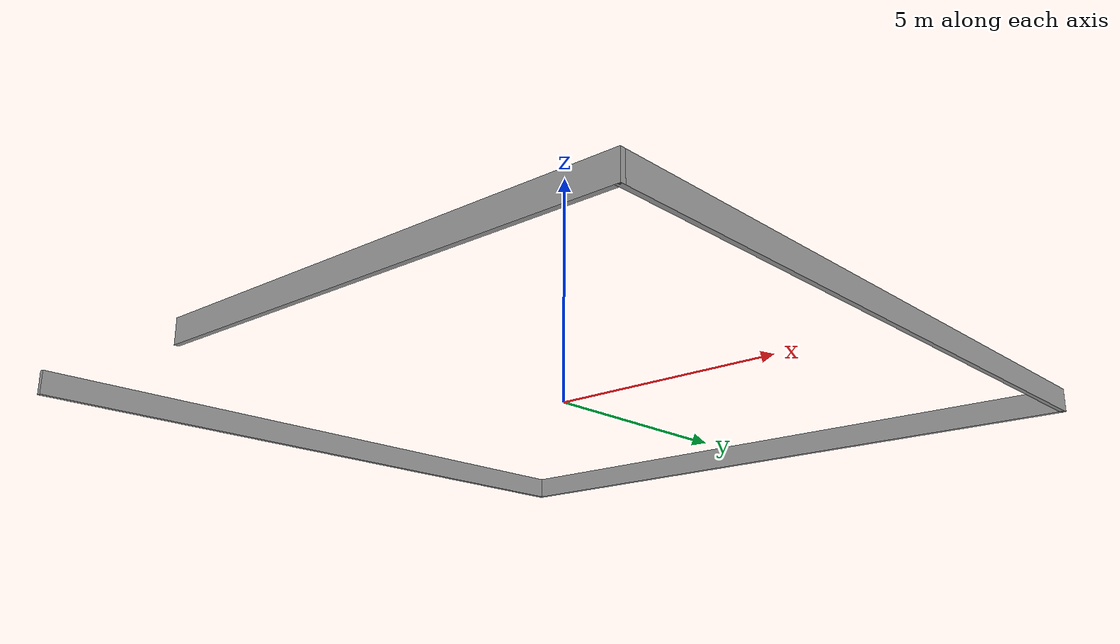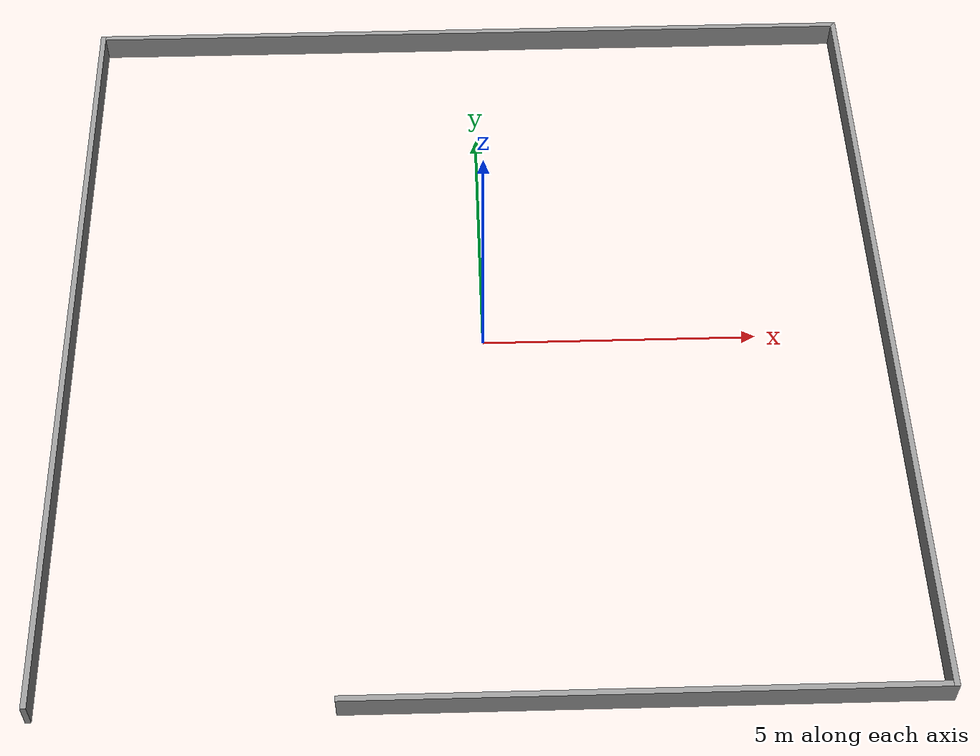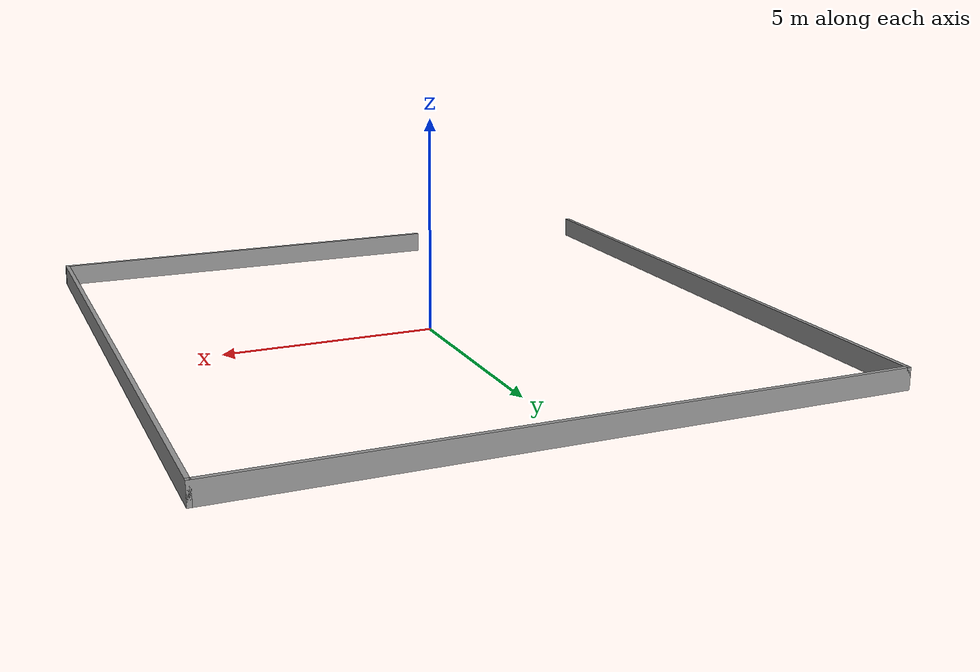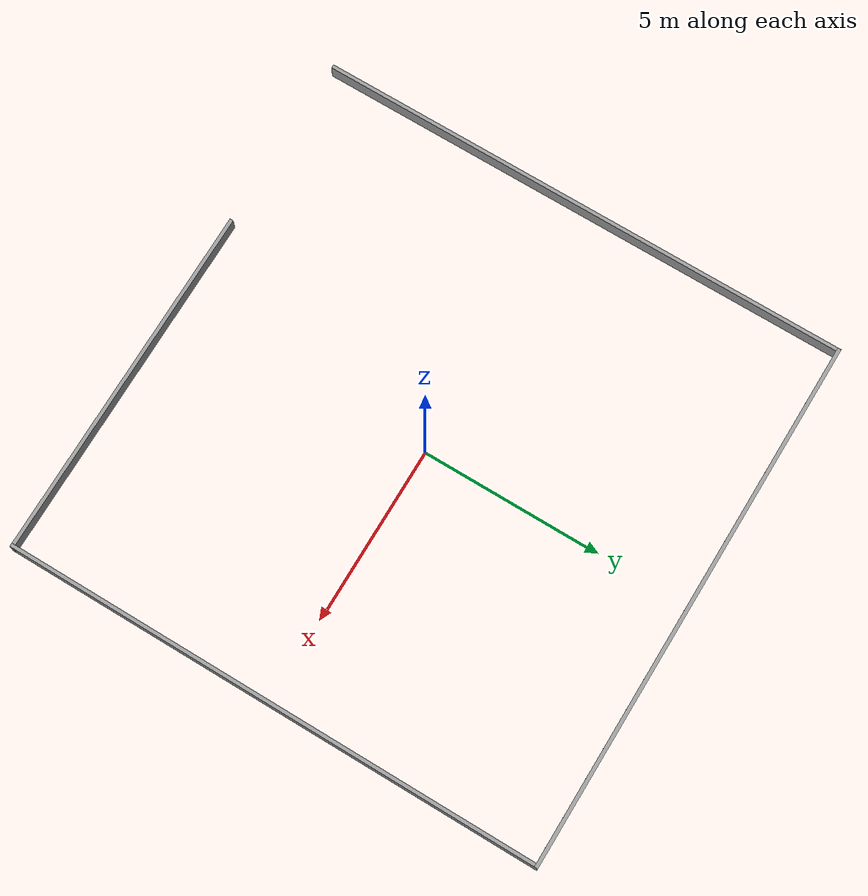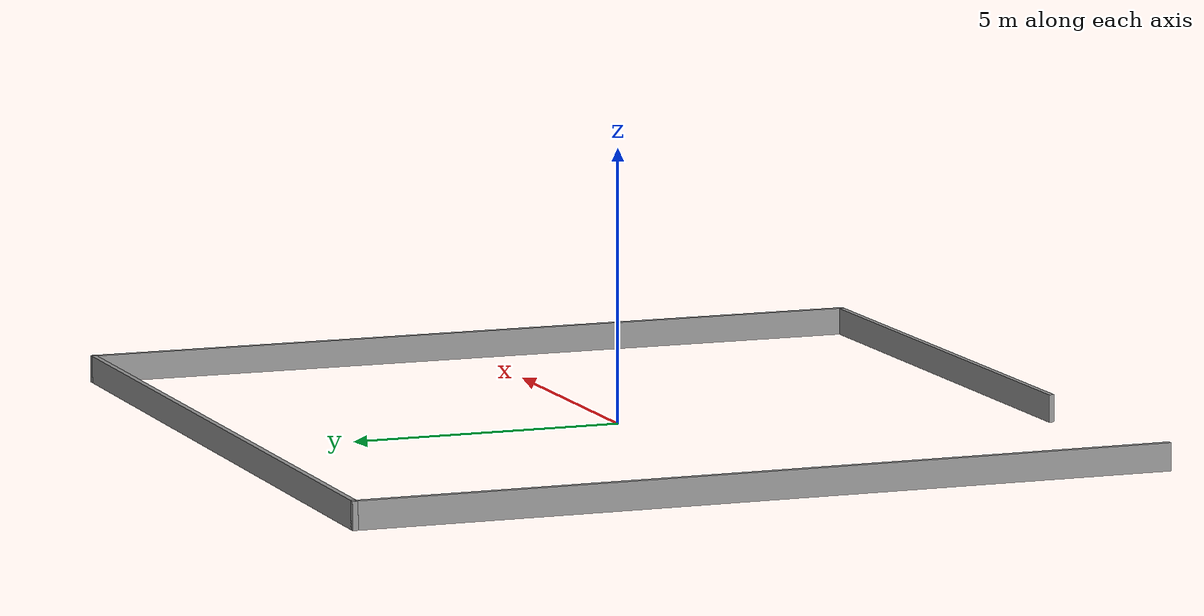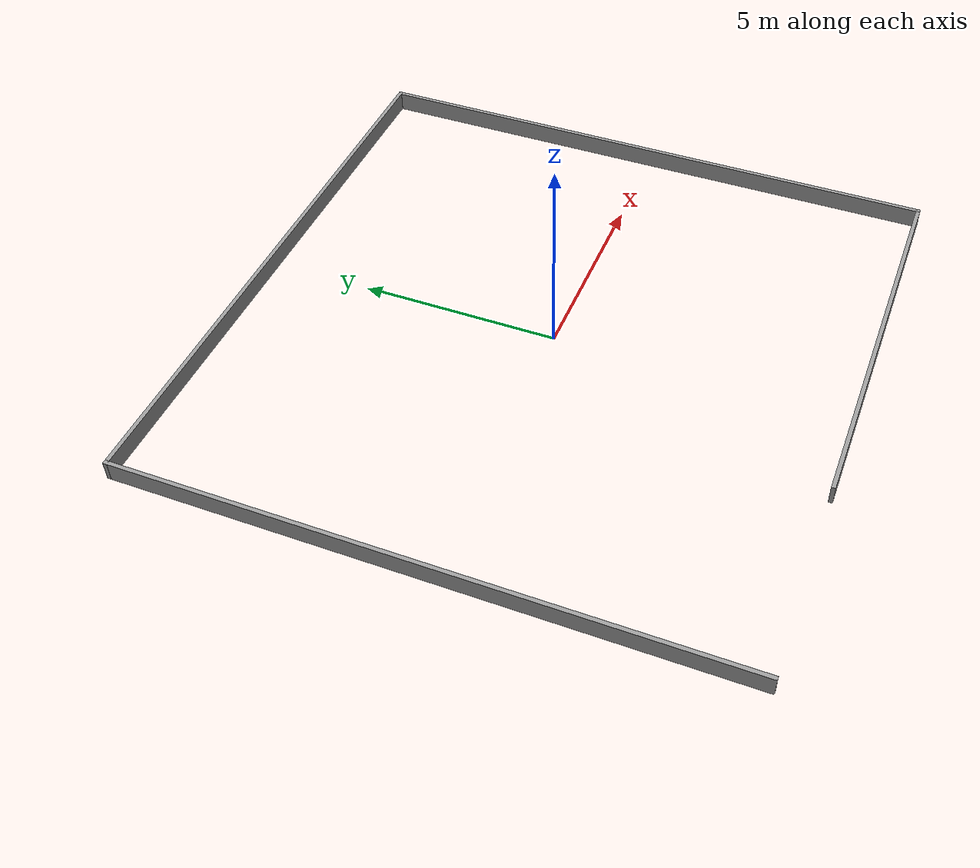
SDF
<?xml version='1.0'?>
<sdf version='1.6'>
  <model name='shape7'>
    <pose frame=''>-0.072 0.103 0 0 -0 0</pose>
    <link name='Wall_14'>
      <collision name='Wall_14_Collision'>
        <geometry>
          <box>
            <size>15 0.1 0.5</size>
          </box>
        </geometry>
        <pose frame=''>0 0 0.25 0 -0 0</pose>
      </collision>
      <visual name='Wall_14_Visual'>
        <pose frame=''>0 0 0.25 0 -0 0</pose>
        <geometry>
          <box>
            <size>15 0.1 0.5</size>
          </box>
        </geometry>
        <material>
          <script>
            <uri>file://media/materials/scripts/gazebo.material</uri>
            <name>Gazebo/Grey</name>
          </script>
          <ambient>1 1 1 1</ambient>
        </material>
        <meta>
          <layer>0</layer>
        </meta>
      </visual>
      <pose frame=''>0 7.45 0 0 -0 0</pose>
    </link>
    <link name='Wall_15'>
      <collision name='Wall_15_Collision'>
        <geometry>
          <box>
            <size>15 0.1 0.5</size>
          </box>
        </geometry>
        <pose frame=''>0 0 0.25 0 -0 0</pose>
      </collision>
      <visual name='Wall_15_Visual'>
        <pose frame=''>0 0 0.25 0 -0 0</pose>
        <geometry>
          <box>
            <size>15 0.1 0.5</size>
          </box>
        </geometry>
        <material>
          <script>
            <uri>file://media/materials/scripts/gazebo.material</uri>
            <name>Gazebo/Grey</name>
          </script>
          <ambient>1 1 1 1</ambient>
        </material>
        <meta>
          <layer>0</layer>
        </meta>
      </visual>
      <pose frame=''>7.45 -0 0 0 -0 -1.5708</pose>
    </link>
    <link name='Wall_16'>
      <collision name='Wall_16_Collision'>
        <geometry>
          <box>
            <size>10 0.1 0.5</size>
          </box>
        </geometry>
        <pose frame=''>0 0 0.25 0 -0 0</pose>
      </collision>
      <visual name='Wall_16_Visual'>
        <pose frame=''>0 0 0.25 0 -0 0</pose>
        <geometry>
          <box>
            <size>10 0.1 0.5</size>
          </box>
        </geometry>
        <material>
          <script>
            <uri>file://media/materials/scripts/gazebo.material</uri>
            <name>Gazebo/Grey</name>
          </script>
          <ambient>1 1 1 1</ambient>
        </material>
        <meta>
          <layer>0</layer>
        </meta>
      </visual>
      <pose frame=''>2.5 -7.45 0 0 -0 3.14159</pose>
    </link>
    <link name='Wall_18'>
      <collision name='Wall_18_Collision'>
        <geometry>
          <box>
            <size>15 0.1 0.5</size>
          </box>
        </geometry>
        <pose frame=''>0 0 0.25 0 -0 0</pose>
      </collision>
      <visual name='Wall_18_Visual'>
        <pose frame=''>0 0 0.25 0 -0 0</pose>
        <geometry>
          <box>
            <size>15 0.1 0.5</size>
          </box>
        </geometry>
        <material>
          <script>
            <uri>file://media/materials/scripts/gazebo.material</uri>
            <name>Gazebo/Grey</name>
          </script>
          <ambient>1 1 1 1</ambient>
        </material>
        <meta>
          <layer>0</layer>
        </meta>
      </visual>
      <pose frame=''>-7.45 -0 0 0 -0 -1.5708</pose>
    </link>
    <static>1</static>
  </model>
</sdf>
